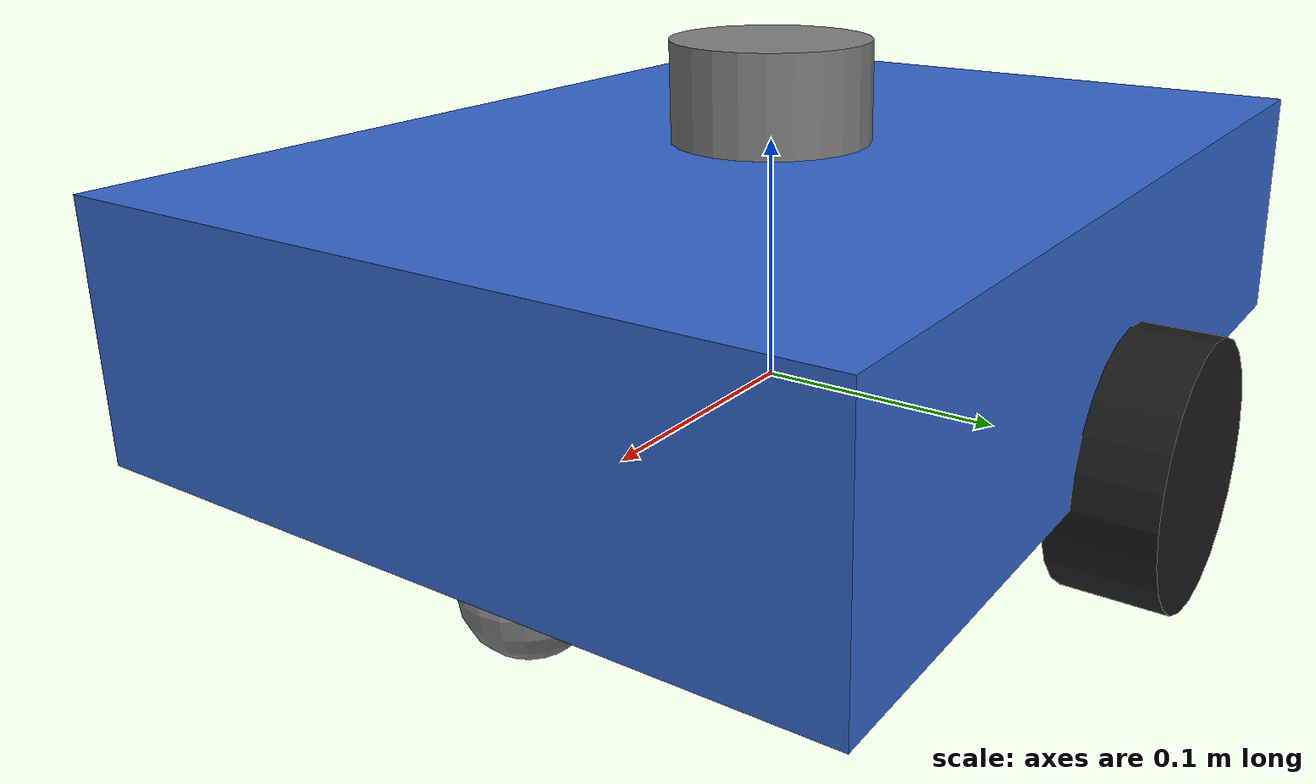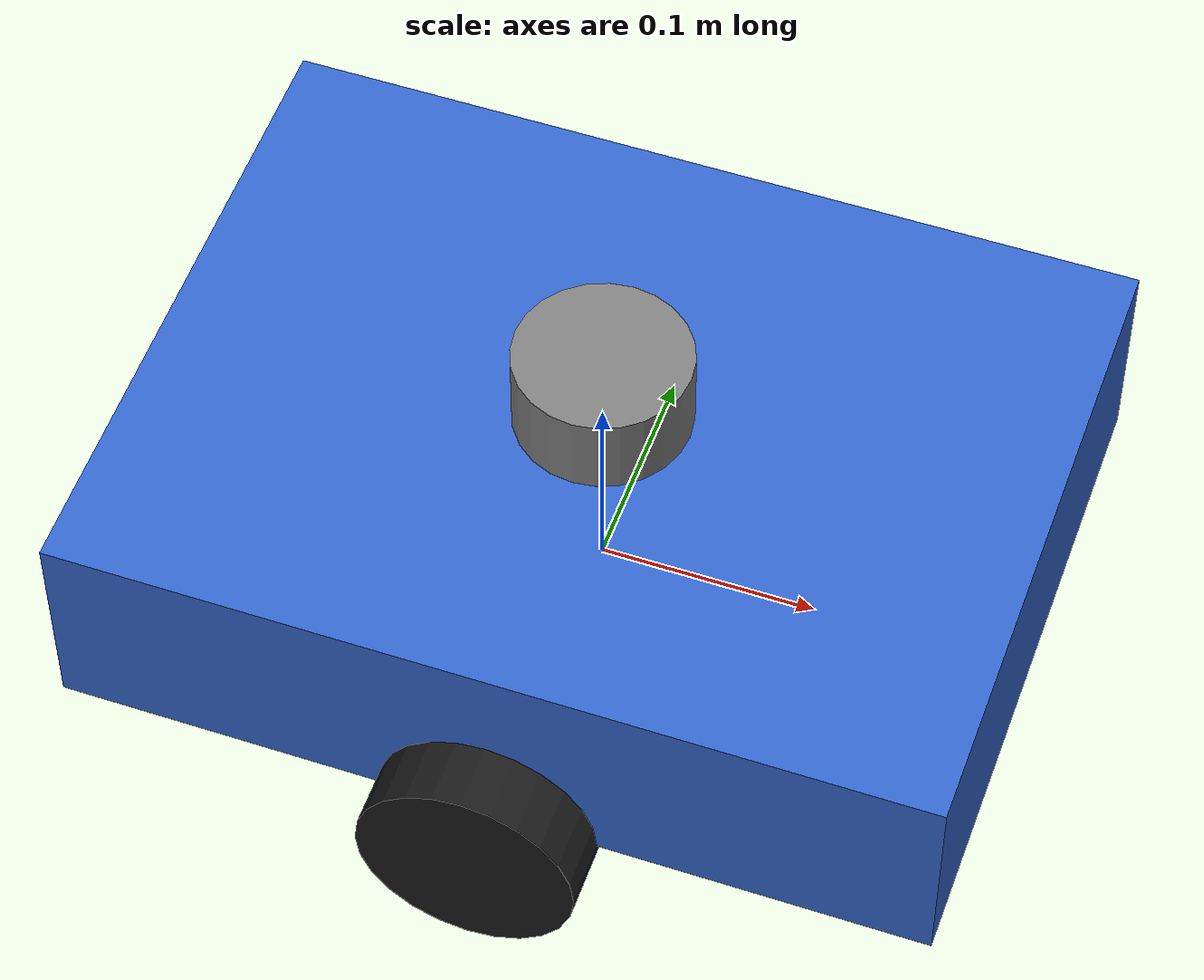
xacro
<?xml version="1.0"?>
<robot name="diffbot" xmlns:xacro="http://www.ros.org/wiki/xacro">

  <!-- Propiedades reutilizables -->
  <xacro:property name="base_length" value="0.4"/>
  <xacro:property name="base_width"  value="0.3"/>
  <xacro:property name="base_height" value="0.1"/>
  <xacro:property name="wheel_radius" value="0.05"/>
  <xacro:property name="wheel_width"  value="0.04"/>
  <xacro:property name="wheel_separation" value="0.32"/>

  <!-- Materiales -->
  <material name="blue"><color rgba="0.2 0.4 0.8 1.0"/></material>
  <material name="black"><color rgba="0.1 0.1 0.1 1.0"/></material>
  <material name="grey"><color rgba="0.5 0.5 0.5 1.0"/></material>

  <!-- base_footprint: frame en el suelo -->
  <link name="base_footprint"/>

  <joint name="base_footprint_to_base_link" type="fixed">
    <parent link="base_footprint"/>
    <child  link="base_link"/>
    <origin xyz="0 0 ${wheel_radius}" rpy="0 0 0"/>
  </joint>

  <!-- base_link: chasis -->
  <link name="base_link">
    <visual>
      <geometry>
        <box size="${base_length} ${base_width} ${base_height}"/>
      </geometry>
      <material name="blue"/>
    </visual>
    <collision>
      <geometry>
        <box size="${base_length} ${base_width} ${base_height}"/>
      </geometry>
    </collision>
    <inertial>
      <mass value="2.0"/>
      <inertia ixx="0.02" ixy="0" ixz="0" iyy="0.04" iyz="0" izz="0.05"/>
    </inertial>
  </link>

  <!-- Macro para crear una rueda -->
  <xacro:macro name="wheel" params="prefix y_reflect">
    <link name="${prefix}_wheel_link">
      <visual>
        <origin xyz="0 0 0" rpy="${pi/2} 0 0"/>
        <geometry>
          <cylinder radius="${wheel_radius}" length="${wheel_width}"/>
        </geometry>
        <material name="black"/>
      </visual>
      <collision>
        <origin xyz="0 0 0" rpy="${pi/2} 0 0"/>
        <geometry>
          <cylinder radius="${wheel_radius}" length="${wheel_width}"/>
        </geometry>
      </collision>
      <inertial>
        <mass value="0.1"/>
        <inertia ixx="0.0001" ixy="0" ixz="0" iyy="0.0001" iyz="0" izz="0.0001"/>
      </inertial>
    </link>

    <joint name="${prefix}_wheel_joint" type="continuous">
      <parent link="base_link"/>
      <child  link="${prefix}_wheel_link"/>
      <origin xyz="0 ${y_reflect * wheel_separation/2} ${-base_height/2}" rpy="0 0 0"/>
      <axis xyz="0 1 0"/>
    </joint>
  </xacro:macro>

  <xacro:wheel prefix="left"  y_reflect="1"/>
  <xacro:wheel prefix="right" y_reflect="-1"/>

  <!-- Caster esfera delantera -->
  <link name="caster_link">
    <visual>
      <geometry><sphere radius="0.025"/></geometry>
      <material name="grey"/>
    </visual>
    <collision>
      <geometry><sphere radius="0.025"/></geometry>
    </collision>
    <inertial>
      <mass value="0.05"/>
      <inertia ixx="0.00001" ixy="0" ixz="0" iyy="0.00001" iyz="0" izz="0.00001"/>
    </inertial>
  </link>

  <joint name="caster_joint" type="fixed">
    <parent link="base_link"/>
    <child  link="caster_link"/>
    <origin xyz="${base_length/2 - 0.05} 0 ${-base_height/2 - 0.025}" rpy="0 0 0"/>
  </joint>

  <!-- LiDAR encima del chasis -->
  <link name="lidar_link">
    <visual>
      <geometry><cylinder radius="0.04" length="0.04"/></geometry>
      <material name="grey"/>
    </visual>
    <collision>
      <geometry><cylinder radius="0.04" length="0.04"/></geometry>
    </collision>
    <inertial>
      <mass value="0.1"/>
      <inertia ixx="0.0001" ixy="0" ixz="0" iyy="0.0001" iyz="0" izz="0.0001"/>
    </inertial>
  </link>

  <joint name="lidar_joint" type="fixed">
    <parent link="base_link"/>
    <child  link="lidar_link"/>
    <origin xyz="0 0 ${base_height/2 + 0.02}" rpy="0 0 0"/>
  </joint>

  <!-- ═══════════════════════════════════════════
       GAZEBO PLUGINS
  ═══════════════════════════════════════════ -->

  <!-- Differential drive -->
  <gazebo>
    <plugin name="differential_drive_controller"
            filename="libgazebo_ros_diff_drive.so">
      <ros>
        <remapping>cmd_vel:=cmd_vel</remapping>
        <remapping>odom:=odom</remapping>
      </ros>
      <left_joint>left_wheel_joint</left_joint>
      <right_joint>right_wheel_joint</right_joint>
      <wheel_separation>0.32</wheel_separation>
      <wheel_diameter>0.1</wheel_diameter>
      <max_wheel_torque>20</max_wheel_torque>
      <max_wheel_acceleration>1.0</max_wheel_acceleration>
      <publish_odom>true</publish_odom>
      <publish_odom_tf>true</publish_odom_tf>
      <publish_wheel_tf>true</publish_wheel_tf>
      <odometry_frame>odom</odometry_frame>
      <robot_base_frame>base_footprint</robot_base_frame>
    </plugin>
  </gazebo>

  <!-- LiDAR -->
  <gazebo reference="lidar_link">
    <sensor type="ray" name="lidar_sensor">
      <pose>0 0 0 0 0 0</pose>
      <visualize>true</visualize>
      <update_rate>5</update_rate>
      <ray>
        <scan>
          <horizontal>
            <samples>180</samples>
            <resolution>1</resolution>
            <min_angle>-3.14159</min_angle>
            <max_angle>3.14159</max_angle>
          </horizontal>
        </scan>
        <range>
          <min>0.12</min>
          <max>10.0</max>
          <resolution>0.01</resolution>
        </range>
        <noise>
          <type>gaussian</type>
          <mean>0.0</mean>
          <stddev>0.01</stddev>
        </noise>
      </ray>
      <plugin name="lidar_plugin" filename="libgazebo_ros_ray_sensor.so">
        <ros>
          <remapping>~/out:=scan</remapping>
        </ros>
        <output_type>sensor_msgs/LaserScan</output_type>
        <frame_name>lidar_link</frame_name>
      </plugin>
    </sensor>
  </gazebo>

  <!-- Fricción caster (evita que el robot se incline) -->
  <gazebo reference="caster_link">
    <mu1>0.0</mu1>
    <mu2>0.0</mu2>
  </gazebo>

</robot>
